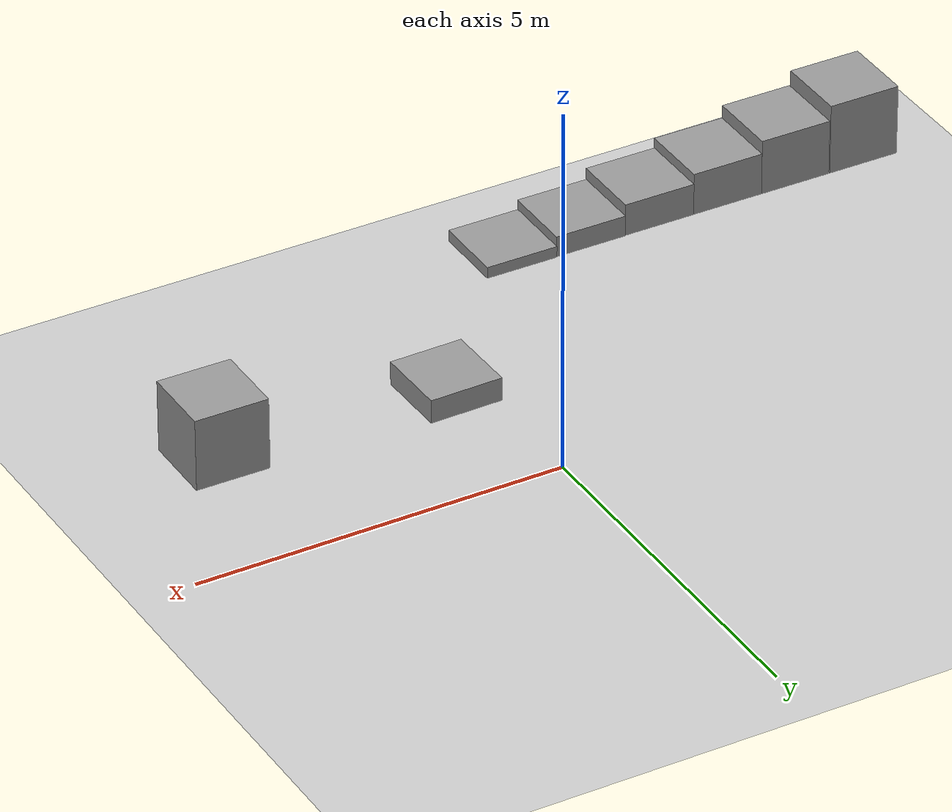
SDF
<sdf version="1.6">
 <world name="default">
  <model name="ground_plane">
   <static>1</static>
   <link name="link">
    <collision name="collision">
     <geometry><plane><normal>0 0 1</normal><size>100 100</size></plane></geometry>
     <surface><friction><ode><mu>100</mu><mu2>50</mu2></ode></friction></surface>
    </collision>
    <visual name="visual">
     <cast_shadows>0</cast_shadows>
     <geometry><plane><normal>0 0 1</normal><size>100 100</size></plane></geometry>
     <material>
      <script><uri>file://media/materials/scripts/gazebo.material</uri><name>Gazebo/Grey</name></script>
     </material>
    </visual>
   </link>
  </model>
  <light name="sun" type="directional">
   <pose>0 0 10 0 -0 0</pose>
   <diffuse>0.8 0.8 0.8 1</diffuse>
   <specular>0.1 0.1 0.1 1</specular>
   <attenuation>
    <range>1000</range>
    <constant>0.9</constant>
    <linear>0.01</linear>
    <quadratic>0.001</quadratic>
   </attenuation>
   <direction>-0.5 0.5 -1</direction>
  </light>
  <gravity>0 0 -9.8</gravity>
  <magnetic_field>6e-06 2.3e-05 -4.2e-05</magnetic_field>
  <atmosphere type="adiabatic"/>
  <physics name="default_physics" default="0" type="ode">
   <max_step_size>0.001</max_step_size>
   <real_time_factor>1</real_time_factor>
   <real_time_update_rate>1000</real_time_update_rate>
  </physics>
  <scene><ambient>0.4 0.4 0.4 1</ambient><background>0.7 0.7 0.7 1</background><shadows>1</shadows></scene>
  <spherical_coordinates>
   <surface_model>EARTH_WGS84</surface_model>
   <latitude_deg>0</latitude_deg>
   <longitude_deg>0</longitude_deg>
   <elevation>0</elevation>
   <heading_deg>0</heading_deg>
  </spherical_coordinates>
  <model name="unit_box_0">
   <pose>0.420738 -2.132 0.164517 0 -0 0.015592</pose>
   <link name="link">
    <inertial>
     <mass>1</mass>
     <inertia>
      <ixx>0.166667</ixx>
      <ixy>0</ixy>
      <ixz>0</ixz>
      <iyy>0.166667</iyy>
      <iyz>0</iyz>
      <izz>0.166667</izz>
     </inertia>
    </inertial>
    <collision name="collision"><geometry><box><size>1 1 0.329034</size></box></geometry></collision>
    <visual name="visual">
     <geometry><box><size>1 1 0.329034</size></box></geometry>
     <material>
      <script><name>Gazebo/Grey</name><uri>file://media/materials/scripts/gazebo.material</uri></script>
     </material>
    </visual>
   </link>
  </model>
  <model name="unit_box_1">
   <pose>3.57068 -2.2429 0.499995 0 -1e-05 -0.007797</pose>
   <link name="link">
    <inertial>
     <mass>1</mass>
     <inertia>
      <ixx>0.166667</ixx>
      <ixy>0</ixy>
      <ixz>0</ixz>
      <iyy>0.166667</iyy>
      <iyz>0</iyz>
      <izz>0.166667</izz>
     </inertia>
    </inertial>
    <collision name="collision"><geometry><box><size>1 1 1</size></box></geometry></collision>
    <visual name="visual">
     <geometry><box><size>1 1 1</size></box></geometry>
     <material>
      <script><name>Gazebo/Grey</name><uri>file://media/materials/scripts/gazebo.material</uri></script>
     </material>
    </visual>
   </link>
  </model>
  <model name="unit_box_2">
   <pose>-6.79904 -4.62808 0.499995 1e-05 -0 -0.004264</pose>
   <link name="link">
    <inertial>
     <mass>1</mass>
     <inertia>
      <ixx>0.166667</ixx>
      <ixy>0</ixy>
      <ixz>0</ixz>
      <iyy>0.166667</iyy>
      <iyz>0</iyz>
      <izz>0.166667</izz>
     </inertia>
    </inertial>
    <collision name="collision"><geometry><box><size>1 1 1</size></box></geometry></collision>
    <visual name="visual">
     <geometry><box><size>1 1 1</size></box></geometry>
     <material>
      <script><name>Gazebo/Grey</name><uri>file://media/materials/scripts/gazebo.material</uri></script>
     </material>
    </visual>
   </link>
  </model>
  <model name="unit_box_3">
   <pose>-5.78627 -4.63213 0.392199 0 0 -0.00436</pose>
   <link name="link">
    <inertial>
     <mass>1</mass>
     <inertia>
      <ixx>0.166667</ixx>
      <ixy>0</ixy>
      <ixz>0</ixz>
      <iyy>0.166667</iyy>
      <iyz>0</iyz>
      <izz>0.166667</izz>
     </inertia>
    </inertial>
    <collision name="collision"><geometry><box><size>1 1 0.784397</size></box></geometry></collision>
    <visual name="visual">
     <geometry><box><size>1 1 0.784397</size></box></geometry>
     <material>
      <script><name>Gazebo/Grey</name><uri>file://media/materials/scripts/gazebo.material</uri></script>
     </material>
    </visual>
   </link>
  </model>
  <model name="unit_box_4">
   <pose>-4.78629 -4.6371 0.298785 0 0 -0.00436</pose>
   <link name="link">
    <inertial>
     <mass>1</mass>
     <inertia>
      <ixx>0.166667</ixx>
      <ixy>0</ixy>
      <ixz>0</ixz>
      <iyy>0.166667</iyy>
      <iyz>0</iyz>
      <izz>0.166667</izz>
     </inertia>
    </inertial>
    <collision name="collision"><geometry><box><size>1 1 0.597571</size></box></geometry></collision>
    <visual name="visual">
     <geometry><box><size>1 1 0.597571</size></box></geometry>
     <material>
      <script><name>Gazebo/Grey</name><uri>file://media/materials/scripts/gazebo.material</uri></script>
     </material>
    </visual>
   </link>
  </model>
  <model name="unit_box_5">
   <pose>-3.78628 -4.63823 0.227056 0 0 -0.004364</pose>
   <link name="link">
    <inertial>
     <mass>1</mass>
     <inertia>
      <ixx>0.166667</ixx>
      <ixy>0</ixy>
      <ixz>0</ixz>
      <iyy>0.166667</iyy>
      <iyz>0</iyz>
      <izz>0.166667</izz>
     </inertia>
    </inertial>
    <collision name="collision"><geometry><box><size>1 1 0.454112</size></box></geometry></collision>
    <visual name="visual">
     <geometry><box><size>1 1 0.454112</size></box></geometry>
     <material>
      <script><name>Gazebo/Grey</name><uri>file://media/materials/scripts/gazebo.material</uri></script>
     </material>
    </visual>
   </link>
  </model>
  <model name="unit_box_6">
   <pose>-2.78267 -4.6322 0.148131 0 -1e-05 -0.004534</pose>
   <link name="link">
    <inertial>
     <mass>1</mass>
     <inertia>
      <ixx>0.166667</ixx>
      <ixy>0</ixy>
      <ixz>0</ixz>
      <iyy>0.166667</iyy>
      <iyz>0</iyz>
      <izz>0.166667</izz>
     </inertia>
    </inertial>
    <collision name="collision"><geometry><box><size>1 1 0.296272</size></box></geometry></collision>
    <visual name="visual">
     <geometry><box><size>1 1 0.296272</size></box></geometry>
     <material>
      <script><name>Gazebo/Grey</name><uri>file://media/materials/scripts/gazebo.material</uri></script>
     </material>
    </visual>
   </link>
  </model>
  <model name="unit_box_7">
   <pose>-1.7826 -4.62531 0.080141 0 0 -0.004531</pose>
   <link name="link">
    <inertial>
     <mass>1</mass>
     <inertia>
      <ixx>0.166667</ixx>
      <ixy>0</ixy>
      <ixz>0</ixz>
      <iyy>0.166667</iyy>
      <iyz>0</iyz>
      <izz>0.166667</izz>
     </inertia>
    </inertial>
    <collision name="collision"><geometry><box><size>1 1 0.160283</size></box></geometry></collision>
    <visual name="visual">
     <geometry><box><size>1 1 0.160283</size></box></geometry>
     <material>
      <script><name>Gazebo/Grey</name><uri>file://media/materials/scripts/gazebo.material</uri></script>
     </material>
    </visual>
   </link>
  </model>
 </world>
</sdf>
